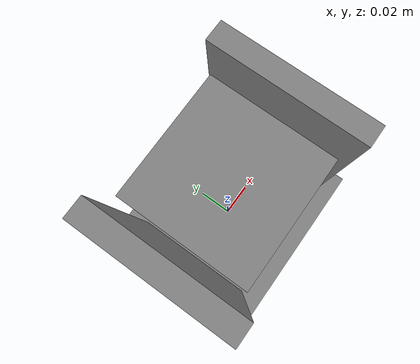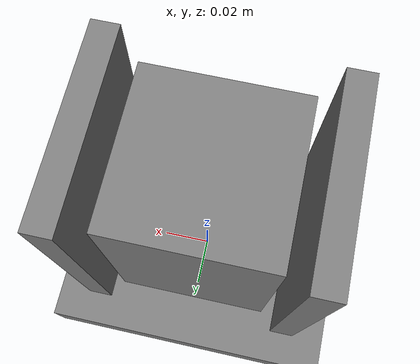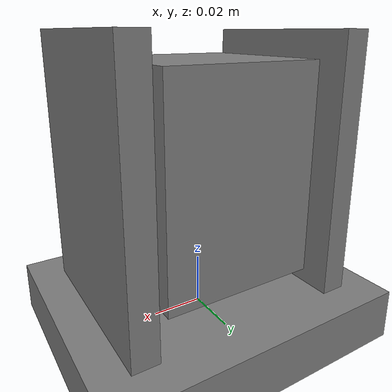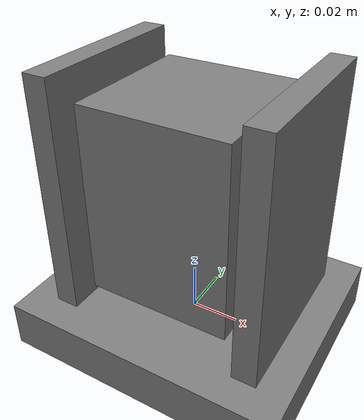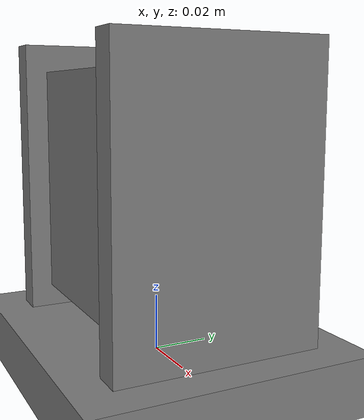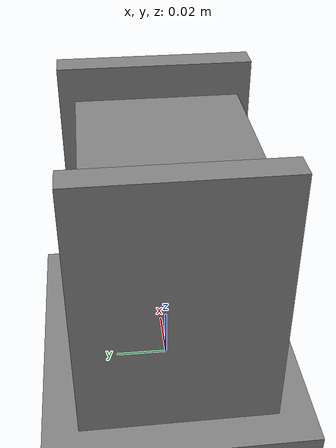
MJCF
<mujoco model="sim_003">
  <option gravity="0 0 -9.81" integrator="RK4" timestep="0.002"/>
  <worldbody>
    <camera name="agentview" pos="0 -0.55 0.42" xyaxes="1 0 0 0 0.65 0.76"/>
    <body name="table" pos="0 0 0">
      <geom name="table_top" type="box" size="0.20 0.20 0.01" pos="0 0 0"/>
      <body name="opening_left" pos="-0.04100000 0 0.06"><geom type="box" size="0.00500000 0.03600000 0.05"/></body>
      <body name="opening_right" pos="0.04100000 0 0.06"><geom type="box" size="0.00500000 0.03600000 0.05"/></body>
    </body>
    <body name="object" pos="0 0 0.06000000" quat="1 0 0 0">
      <freejoint/>
      <geom name="object_geom" type="box" size="0.03000000 0.03000000 0.04000000"
            mass="0.50000000" friction="0.6 0.01 0.001"/>
    </body>
  </worldbody>
</mujoco>
